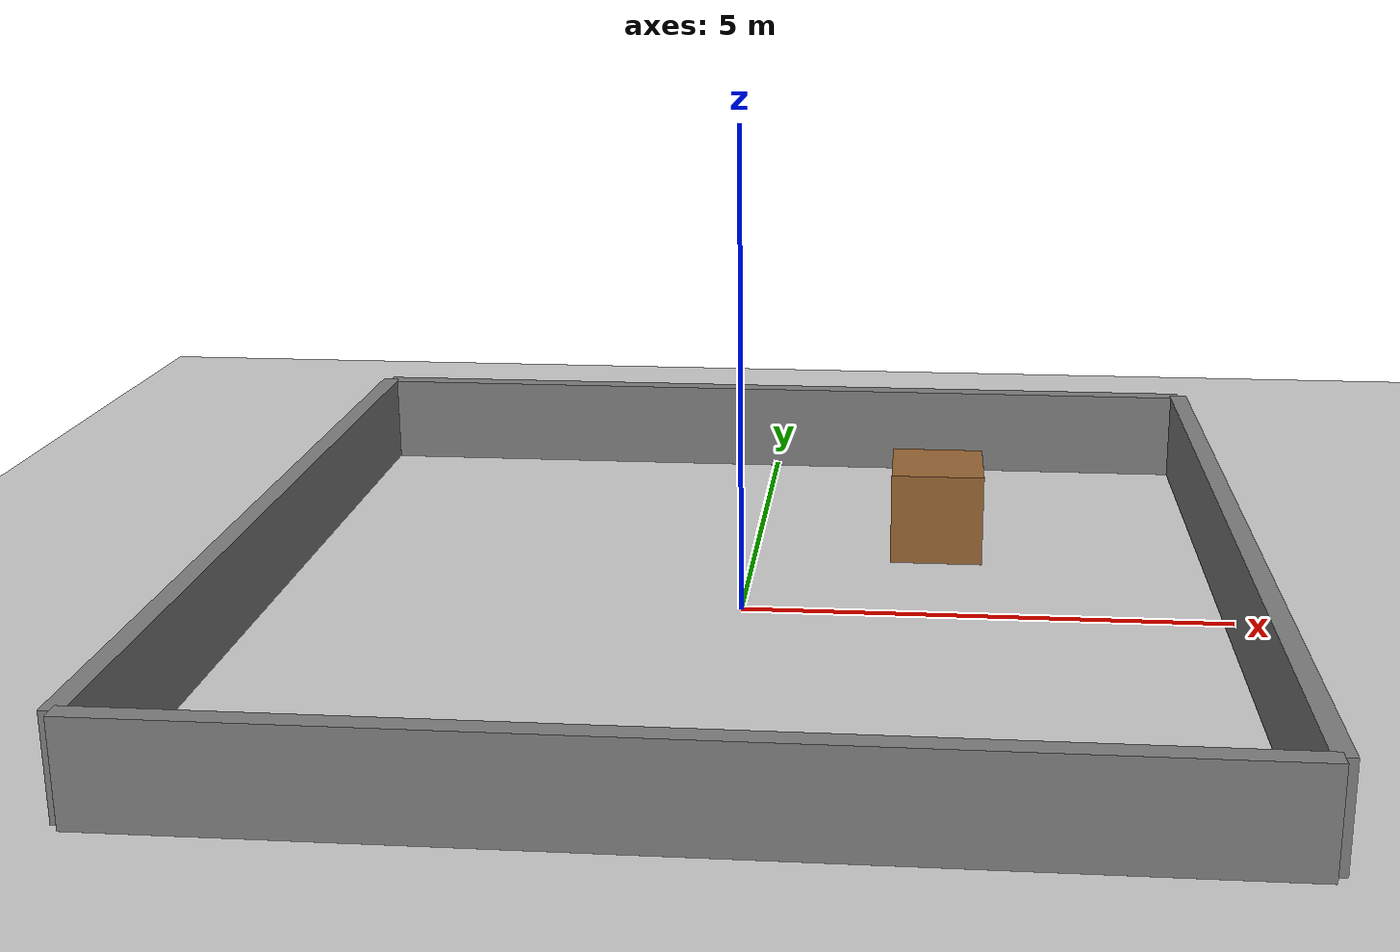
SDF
<?xml version="1.0" ?>
<sdf version="1.6">
  <world name="default">
    <include>
      <uri>model://sun</uri>
    </include>
    <include>
      <uri>model://ground_plane</uri>
    </include>

    <model name="wall_1">
      <pose>0 5 0.5 0 0 0</pose>
      <static>true</static>
      <link name="link">
        <collision name="collision">
          <geometry><box><size>10 0.2 1</size></box></geometry>
        </collision>
        <visual name="visual">
          <geometry><box><size>10 0.2 1</size></box></geometry>
          <material>
            <ambient>0.5 0.5 0.5 1</ambient>
            <diffuse>0.5 0.5 0.5 1</diffuse>
          </material>
        </visual>
      </link>
    </model>

    <model name="wall_2">
      <pose>0 -5 0.5 0 0 0</pose>
      <static>true</static>
      <link name="link">
        <collision name="collision">
          <geometry><box><size>10 0.2 1</size></box></geometry>
        </collision>
        <visual name="visual">
          <geometry><box><size>10 0.2 1</size></box></geometry>
          <material>
            <ambient>0.5 0.5 0.5 1</ambient>
            <diffuse>0.5 0.5 0.5 1</diffuse>
          </material>
        </visual>
      </link>
    </model>

    <model name="wall_3">
      <pose>5 0 0.5 0 0 1.5708</pose>
      <static>true</static>
      <link name="link">
        <collision name="collision">
          <geometry><box><size>10 0.2 1</size></box></geometry>
        </collision>
        <visual name="visual">
          <geometry><box><size>10 0.2 1</size></box></geometry>
          <material>
            <ambient>0.5 0.5 0.5 1</ambient>
            <diffuse>0.5 0.5 0.5 1</diffuse>
          </material>
        </visual>
      </link>
    </model>

    <model name="wall_4">
      <pose>-5 0 0.5 0 0 1.5708</pose>
      <static>true</static>
      <link name="link">
        <collision name="collision">
          <geometry><box><size>10 0.2 1</size></box></geometry>
        </collision>
        <visual name="visual">
          <geometry><box><size>10 0.2 1</size></box></geometry>
          <material>
            <ambient>0.5 0.5 0.5 1</ambient>
            <diffuse>0.5 0.5 0.5 1</diffuse>
          </material>
        </visual>
      </link>
    </model>

    <model name="obstacle_box">
      <pose>2 2 0.5 0 0 0</pose>
      <static>true</static>
      <link name="link">
        <collision name="collision">
          <geometry><box><size>1 1 1</size></box></geometry>
        </collision>
        <visual name="visual">
          <geometry><box><size>1 1 1</size></box></geometry>
          <material>
            <ambient>0.6 0.4 0.2 1</ambient>
            <diffuse>0.6 0.4 0.2 1</diffuse>
          </material>
        </visual>
      </link>
    </model>
  </world>
</sdf>
